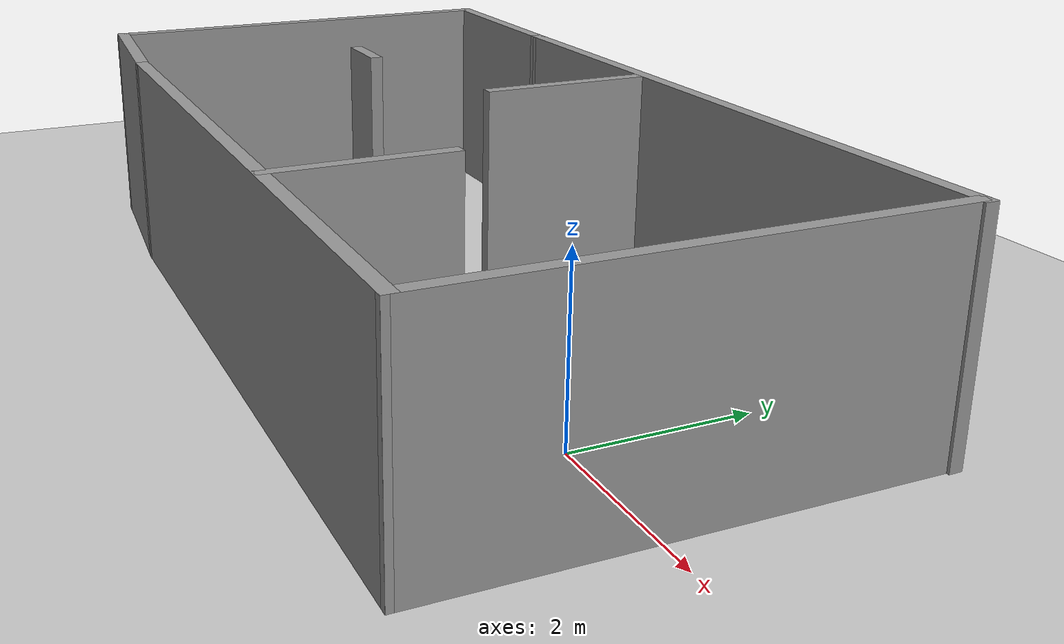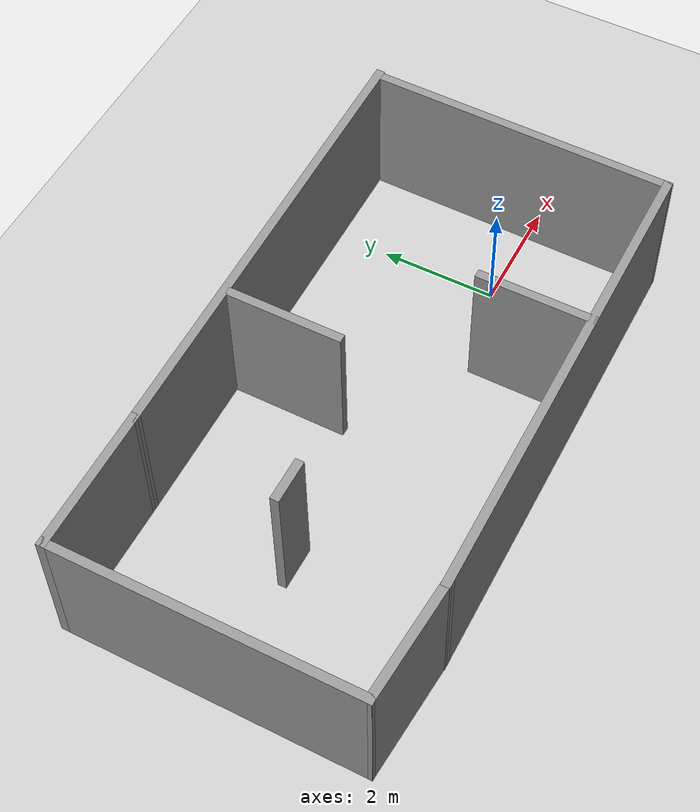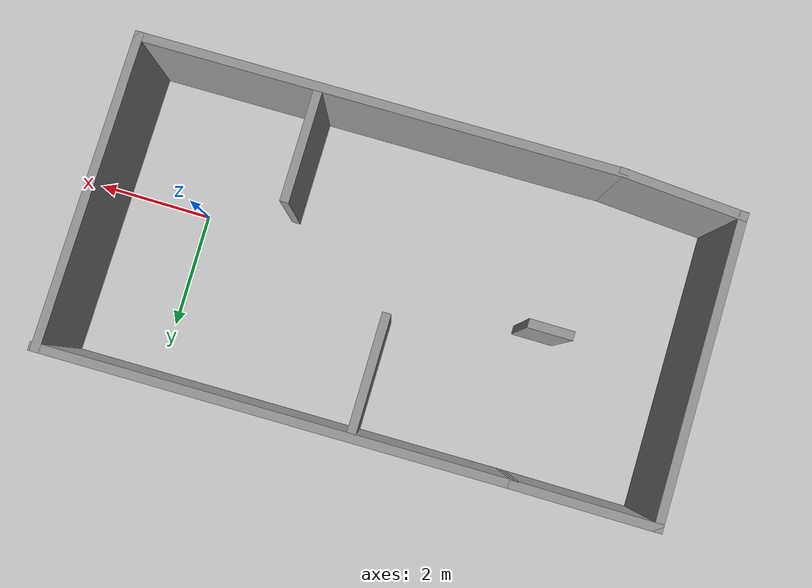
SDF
<sdf version="1.7">
 <world name="default">
  <light name="sun" type="directional">
   <pose>0 0 10 0 -0 0</pose>
   <diffuse>0.8 0.8 0.8 1</diffuse>
   <specular>0.2 0.2 0.2 1</specular>
   <attenuation>
    <range>1000</range>
    <constant>0.9</constant>
    <linear>0.01</linear>
    <quadratic>0.001</quadratic>
   </attenuation>
   <direction>-0.5 0.1 -0.9</direction>
   <spot><inner_angle>0</inner_angle><outer_angle>0</outer_angle><falloff>0</falloff></spot>
  </light>
  <model name="ground_plane">
   <static>1</static>
   <link name="link">
    <collision name="collision">
     <geometry><plane><normal>0 0 1</normal><size>100 100</size></plane></geometry>
     <surface>
      <contact><collide_bitmask>65535</collide_bitmask></contact>
      <friction><ode><mu>100</mu><mu2>50</mu2></ode></friction>
     </surface>
    </collision>
    <visual name="visual">
     <cast_shadows>0</cast_shadows>
     <geometry><plane><normal>0 0 1</normal><size>100 100</size></plane></geometry>
     <material>
      <script><uri>file://media/materials/scripts/gazebo.material</uri><name>Gazebo/Grey</name></script>
     </material>
    </visual>
   </link>
  </model>
  <gravity>0 0 -9.8</gravity>
  <magnetic_field>6e-06 2.3e-05 -4.2e-05</magnetic_field>
  <atmosphere type="adiabatic"/>
  <physics type="ode">
   <max_step_size>0.001</max_step_size>
   <real_time_factor>1</real_time_factor>
   <real_time_update_rate>1000</real_time_update_rate>
  </physics>
  <scene><ambient>0.4 0.4 0.4 1</ambient><background>0.7 0.7 0.7 1</background><shadows>1</shadows></scene>
  <audio><device>default</device></audio>
  <spherical_coordinates>
   <surface_model>EARTH_WGS84</surface_model>
   <latitude_deg>0</latitude_deg>
   <longitude_deg>0</longitude_deg>
   <elevation>0</elevation>
   <heading_deg>0</heading_deg>
  </spherical_coordinates>
  <model name="WorldV1DIR">
   <pose>-3.51103 0.316134 0 0 -0 0</pose>
   <link name="Wall_1">
    <collision name="Wall_1_Collision">
     <geometry><box><size>8.23691 0.15 2.5</size></box></geometry>
     <pose>0 0 1.25 0 -0 0</pose>
    </collision>
    <visual name="Wall_1_Visual">
     <pose>0 0 1.25 0 -0 0</pose>
     <geometry><box><size>8.23691 0.15 2.5</size></box></geometry>
     <material>
      <script><uri>file://media/materials/scripts/gazebo.material</uri><name>Gazebo/Grey</name></script>
      <ambient>1 1 1 1</ambient>
     </material>
     <meta><layer>0</layer></meta>
    </visual>
    <pose>0.960903 -2.61604 0 0 -0 0.007523</pose>
   </link>
   <link name="Wall_11">
    <collision name="Wall_11_Collision">
     <geometry><box><size>2 0.15 2.5</size></box></geometry>
     <pose>0 0 1.25 0 -0 0</pose>
    </collision>
    <visual name="Wall_11_Visual">
     <pose>0 0 1.25 0 -0 0</pose>
     <geometry><box><size>2 0.15 2.5</size></box></geometry>
     <material>
      <script><uri>file://media/materials/scripts/gazebo.material</uri><name>Gazebo/Grey</name></script>
      <ambient>1 1 1 1</ambient>
     </material>
     <meta><layer>0</layer></meta>
    </visual>
    <pose>-0.091451 1.56627 0 0 -0 -1.5708</pose>
   </link>
   <link name="Wall_13">
    <collision name="Wall_13_Collision">
     <geometry><box><size>2 0.15 2.5</size></box></geometry>
     <pose>0 0 1.25 0 -0 0</pose>
    </collision>
    <visual name="Wall_13_Visual">
     <pose>0 0 1.25 0 -0 0</pose>
     <geometry><box><size>2 0.15 2.5</size></box></geometry>
     <material>
      <script><uri>file://media/materials/scripts/gazebo.material</uri><name>Gazebo/Grey</name></script>
      <ambient>1 1 1 1</ambient>
     </material>
     <meta><layer>0</layer></meta>
    </visual>
    <pose>1.97694 -1.66346 0 0 -0 1.5708</pose>
   </link>
   <link name="Wall_20">
    <collision name="Wall_20_Collision">
     <geometry><box><size>0.75 0.15 2.5</size></box></geometry>
     <pose>0 0 1.25 0 -0 0</pose>
    </collision>
    <visual name="Wall_20_Visual">
     <pose>0 0 1.25 0 -0 0</pose>
     <geometry><box><size>0.75 0.15 2.5</size></box></geometry>
     <material>
      <script><uri>file://media/materials/scripts/gazebo.material</uri><name>Gazebo/Grey</name></script>
      <ambient>1 1 1 1</ambient>
     </material>
     <meta><layer>0</layer></meta>
    </visual>
    <pose>-2.6507 0.088284 0 0 -0 0</pose>
   </link>
   <link name="Wall_22">
    <collision name="Wall_22_Collision">
     <geometry><box><size>2.5 0.15 2.5</size></box></geometry>
     <pose>0 0 1.25 0 -0 0</pose>
    </collision>
    <visual name="Wall_22_Visual">
     <pose>0 0 1.25 0 -0 0</pose>
     <geometry><box><size>2.5 0.15 2.5</size></box></geometry>
     <material>
      <script><uri>file://media/materials/scripts/gazebo.material</uri><name>Gazebo/Grey</name></script>
      <ambient>1 1 1 1</ambient>
     </material>
     <meta><layer>0</layer></meta>
    </visual>
    <pose>-3.91619 2.58943 0 0 -0 3.14159</pose>
   </link>
   <link name="Wall_23">
    <collision name="Wall_23_Collision">
     <geometry><box><size>5.25 0.15 2.5</size></box></geometry>
     <pose>0 0 1.25 0 -0 0</pose>
    </collision>
    <visual name="Wall_23_Visual">
     <pose>0 0 1.25 0 -0 0</pose>
     <geometry><box><size>5.25 0.15 2.5</size></box></geometry>
     <material>
      <script><uri>file://media/materials/scripts/gazebo.material</uri><name>Gazebo/Grey</name></script>
      <ambient>1 1 1 1</ambient>
     </material>
     <meta><layer>0</layer></meta>
    </visual>
    <pose>-5.09118 0.039427 0 0 -0 -1.5708</pose>
   </link>
   <link name="Wall_24">
    <collision name="Wall_24_Collision">
     <geometry><box><size>2.16334 0.15 2.5</size></box></geometry>
     <pose>0 0 1.25 0 -0 0</pose>
    </collision>
    <visual name="Wall_24_Visual">
     <pose>0 0 1.25 0 -0 0</pose>
     <geometry><box><size>2.16334 0.15 2.5</size></box></geometry>
     <material>
      <script><uri>file://media/materials/scripts/gazebo.material</uri><name>Gazebo/Grey</name></script>
      <ambient>1 1 1 1</ambient>
     </material>
     <meta><layer>0</layer></meta>
    </visual>
    <pose>-4.08681 -2.57852 0 0 -0 -0.067544</pose>
   </link>
   <link name="Wall_4">
    <collision name="Wall_4_Collision">
     <geometry><box><size>7.98692 0.15 2.5</size></box></geometry>
     <pose>0 0 1.25 0 -0 0</pose>
    </collision>
    <visual name="Wall_4_Visual">
     <pose>0 0 1.25 0 -0 0</pose>
     <geometry><box><size>7.98692 0.15 2.5</size></box></geometry>
     <material>
      <script><uri>file://media/materials/scripts/gazebo.material</uri><name>Gazebo/Grey</name></script>
      <ambient>1 1 1 1</ambient>
     </material>
     <meta><layer>0</layer></meta>
    </visual>
    <pose>1.17715 2.61984 0 0 -0 -3.13383</pose>
   </link>
   <link name="Wall_9">
    <collision name="Wall_9_Collision">
     <geometry><box><size>5.38668 0.15 2.5</size></box></geometry>
     <pose>0 0 1.25 0 -0 0</pose>
    </collision>
    <visual name="Wall_9_Visual">
     <pose>0 0 1.25 0 -0 0</pose>
     <geometry><box><size>5.38668 0.15 2.5</size></box></geometry>
     <material>
      <script><uri>file://media/materials/scripts/gazebo.material</uri><name>Gazebo/Grey</name></script>
      <ambient>1 1 1 1</ambient>
     </material>
     <meta><layer>0</layer></meta>
    </visual>
    <pose>5.03466 0.032319 0 0 -0 -1.58241</pose>
   </link>
   <static>1</static>
  </model>
 </world>
</sdf>
